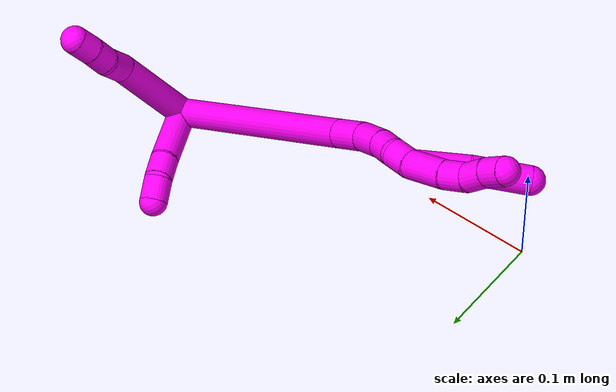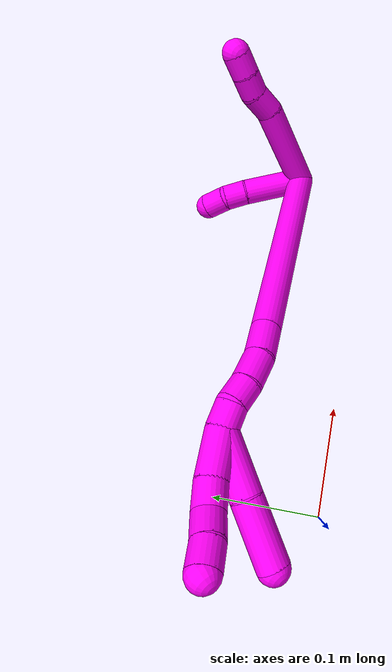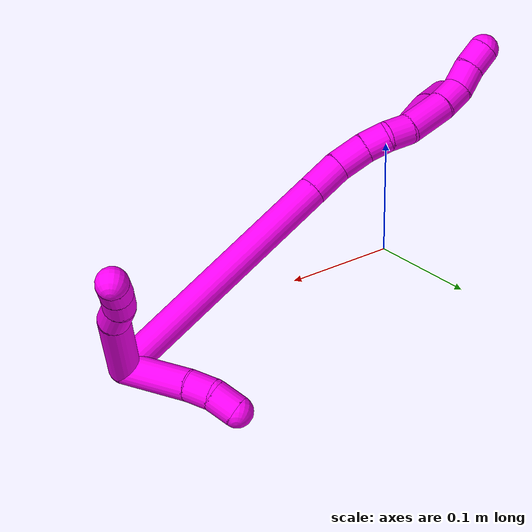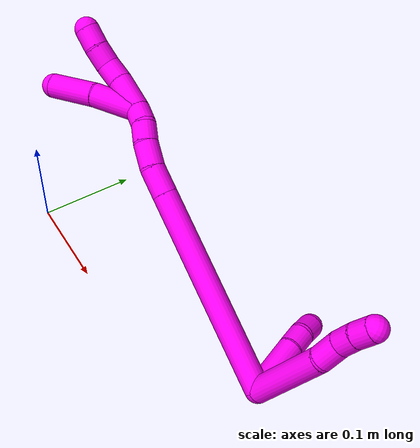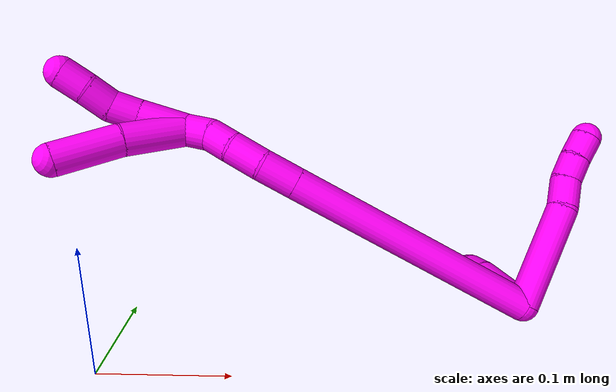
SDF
<sdf version="1.7">
 <world name="default">
  <model name="10">
   <static>0</static>
   <link name="10">
    <collision name="collision-cylinder-e_1_2_8">
     <pose>-0.016778 -0.03854 0.007703 1.37353 -0.40347 -0.332279</pose>
     <geometry><cylinder><radius>0.0125</radius><length>0.085468</length></cylinder></geometry>
     <surface>
      <friction><ode><mu>1.16</mu><mu2>1.16</mu2><slip1>0</slip1><slip2>0</slip2></ode></friction>
      <contact><ode><kp>1e+06</kp><kd>1</kd><max_vel>0</max_vel><min_depth>0.001</min_depth></ode></contact>
     </surface>
    </collision>
    <visual name="visual-cylinder-e_1_2_8">
     <pose>-0.016778 -0.03854 0.007703 1.37353 -0.40347 -0.332279</pose>
     <geometry><cylinder><radius>0.0125</radius><length>0.085468</length></cylinder></geometry>
     <material><ambient>1 0 0.964706 1</ambient></material>
    </visual>
    <collision name="collision-cylinder-e_2_8_9">
     <pose>-0.041147 -0.086345 0.01775 1.32296 -0.671308 -0.530362</pose>
     <geometry><cylinder><radius>0.0125</radius><length>0.024411</length></cylinder></geometry>
     <surface>
      <friction><ode><mu>1.16</mu><mu2>1.16</mu2><slip1>0</slip1><slip2>0</slip2></ode></friction>
      <contact><ode><kp>1e+06</kp><kd>1</kd><max_vel>0</max_vel><min_depth>0.001</min_depth></ode></contact>
     </surface>
    </collision>
    <visual name="visual-cylinder-e_2_8_9">
     <pose>-0.041147 -0.086345 0.01775 1.32296 -0.671308 -0.530362</pose>
     <geometry><cylinder><radius>0.0125</radius><length>0.024411</length></cylinder></geometry>
     <material><ambient>1 0 0.964706 1</ambient></material>
    </visual>
    <collision name="collision-cylinder-e_3_9_10">
     <pose>-0.052566 -0.104722 0.021846 1.38095 -0.391187 -0.32448</pose>
     <geometry><cylinder><radius>0.0125</radius><length>0.020075</length></cylinder></geometry>
     <surface>
      <friction><ode><mu>1.16</mu><mu2>1.16</mu2><slip1>0</slip1><slip2>0</slip2></ode></friction>
      <contact><ode><kp>1e+06</kp><kd>1</kd><max_vel>0</max_vel><min_depth>0.001</min_depth></ode></contact>
     </surface>
    </collision>
    <visual name="visual-cylinder-e_3_9_10">
     <pose>-0.052566 -0.104722 0.021846 1.38095 -0.391187 -0.32448</pose>
     <geometry><cylinder><radius>0.0125</radius><length>0.020075</length></cylinder></geometry>
     <material><ambient>1 0 0.964706 1</ambient></material>
    </visual>
    <collision name="collision-cylinder-e_4_10_6">
     <pose>-0.05978 -0.122882 0.02627 1.28347 -0.344596 -0.258624</pose>
     <geometry><cylinder><radius>0.0125</radius><length>0.020047</length></cylinder></geometry>
     <surface>
      <friction><ode><mu>1.16</mu><mu2>1.16</mu2><slip1>0</slip1><slip2>0</slip2></ode></friction>
      <contact><ode><kp>1e+06</kp><kd>1</kd><max_vel>0</max_vel><min_depth>0.001</min_depth></ode></contact>
     </surface>
    </collision>
    <visual name="visual-cylinder-e_4_10_6">
     <pose>-0.05978 -0.122882 0.02627 1.28347 -0.344596 -0.258624</pose>
     <geometry><cylinder><radius>0.0125</radius><length>0.020047</length></cylinder></geometry>
     <material><ambient>1 0 0.964706 1</ambient></material>
    </visual>
    <collision name="collision-cylinder-e_1_2_11">
     <pose>-0.025864 0.005112 0.011448 -0.419962 -1.11943 0.265495</pose>
     <geometry><cylinder><radius>0.0125</radius><length>0.057485</length></cylinder></geometry>
     <surface>
      <friction><ode><mu>1.16</mu><mu2>1.16</mu2><slip1>0</slip1><slip2>0</slip2></ode></friction>
      <contact><ode><kp>1e+06</kp><kd>1</kd><max_vel>0</max_vel><min_depth>0.001</min_depth></ode></contact>
     </surface>
    </collision>
    <visual name="visual-cylinder-e_1_2_11">
     <pose>-0.025864 0.005112 0.011448 -0.419962 -1.11943 0.265495</pose>
     <geometry><cylinder><radius>0.0125</radius><length>0.057485</length></cylinder></geometry>
     <material><ambient>1 0 0.964706 1</ambient></material>
    </visual>
    <collision name="collision-cylinder-e_2_11_12">
     <pose>-0.060605 0.01331 0.027456 -0.594906 -1.01559 0.337917</pose>
     <geometry><cylinder><radius>0.0125</radius><length>0.020893</length></cylinder></geometry>
     <surface>
      <friction><ode><mu>1.16</mu><mu2>1.16</mu2><slip1>0</slip1><slip2>0</slip2></ode></friction>
      <contact><ode><kp>1e+06</kp><kd>1</kd><max_vel>0</max_vel><min_depth>0.001</min_depth></ode></contact>
     </surface>
    </collision>
    <visual name="visual-cylinder-e_2_11_12">
     <pose>-0.060605 0.01331 0.027456 -0.594906 -1.01559 0.337917</pose>
     <geometry><cylinder><radius>0.0125</radius><length>0.020893</length></cylinder></geometry>
     <material><ambient>1 0 0.964706 1</ambient></material>
    </visual>
    <collision name="collision-cylinder-e_3_12_5">
     <pose>-0.076666 0.022187 0.037651 -0.79914 -0.726702 0.318417</pose>
     <geometry><cylinder><radius>0.0125</radius><length>0.021622</length></cylinder></geometry>
     <surface>
      <friction><ode><mu>1.16</mu><mu2>1.16</mu2><slip1>0</slip1><slip2>0</slip2></ode></friction>
      <contact><ode><kp>1e+06</kp><kd>1</kd><max_vel>0</max_vel><min_depth>0.001</min_depth></ode></contact>
     </surface>
    </collision>
    <visual name="visual-cylinder-e_3_12_5">
     <pose>-0.076666 0.022187 0.037651 -0.79914 -0.726702 0.318417</pose>
     <geometry><cylinder><radius>0.0125</radius><length>0.021622</length></cylinder></geometry>
     <material><ambient>1 0 0.964706 1</ambient></material>
    </visual>
    <collision name="collision-cylinder-e_1_2_13">
     <pose>-0.071612 0.010587 -0.072325 -2.99624 -0.775147 2.78862</pose>
     <geometry><cylinder><radius>0.0125</radius><length>0.204658</length></cylinder></geometry>
     <surface>
      <friction><ode><mu>1.16</mu><mu2>1.16</mu2><slip1>0</slip1><slip2>0</slip2></ode></friction>
      <contact><ode><kp>1e+06</kp><kd>1</kd><max_vel>0</max_vel><min_depth>0.001</min_depth></ode></contact>
     </surface>
    </collision>
    <visual name="visual-cylinder-e_1_2_13">
     <pose>-0.071612 0.010587 -0.072325 -2.99624 -0.775147 2.78862</pose>
     <geometry><cylinder><radius>0.0125</radius><length>0.204658</length></cylinder></geometry>
     <material><ambient>1 0 0.964706 1</ambient></material>
    </visual>
    <collision name="collision-cylinder-e_2_13_14">
     <pose>-0.153311 0.022615 -0.154832 -3.00098 -0.775739 2.80022</pose>
     <geometry><cylinder><radius>0.0125</radius><length>0.028812</length></cylinder></geometry>
     <surface>
      <friction><ode><mu>1.16</mu><mu2>1.16</mu2><slip1>0</slip1><slip2>0</slip2></ode></friction>
      <contact><ode><kp>1e+06</kp><kd>1</kd><max_vel>0</max_vel><min_depth>0.001</min_depth></ode></contact>
     </surface>
    </collision>
    <visual name="visual-cylinder-e_2_13_14">
     <pose>-0.153311 0.022615 -0.154832 -3.00098 -0.775739 2.80022</pose>
     <geometry><cylinder><radius>0.0125</radius><length>0.028812</length></cylinder></geometry>
     <material><ambient>1 0 0.964706 1</ambient></material>
    </visual>
    <collision name="collision-cylinder-e_3_14_15">
     <pose>-0.17423 0.025643 -0.172379 -2.92944 -0.963115 2.73961</pose>
     <geometry><cylinder><radius>0.0125</radius><length>0.026386</length></cylinder></geometry>
     <surface>
      <friction><ode><mu>1.16</mu><mu2>1.16</mu2><slip1>0</slip1><slip2>0</slip2></ode></friction>
      <contact><ode><kp>1e+06</kp><kd>1</kd><max_vel>0</max_vel><min_depth>0.001</min_depth></ode></contact>
     </surface>
    </collision>
    <visual name="visual-cylinder-e_3_14_15">
     <pose>-0.17423 0.025643 -0.172379 -2.92944 -0.963115 2.73961</pose>
     <geometry><cylinder><radius>0.0125</radius><length>0.026386</length></cylinder></geometry>
     <material><ambient>1 0 0.964706 1</ambient></material>
    </visual>
    <collision name="collision-cylinder-e_4_15_16">
     <pose>-0.19406 0.028773 -0.183936 -2.78869 -1.1099 2.58148</pose>
     <geometry><cylinder><radius>0.0125</radius><length>0.020093</length></cylinder></geometry>
     <surface>
      <friction><ode><mu>1.16</mu><mu2>1.16</mu2><slip1>0</slip1><slip2>0</slip2></ode></friction>
      <contact><ode><kp>1e+06</kp><kd>1</kd><max_vel>0</max_vel><min_depth>0.001</min_depth></ode></contact>
     </surface>
    </collision>
    <visual name="visual-cylinder-e_4_15_16">
     <pose>-0.19406 0.028773 -0.183936 -2.78869 -1.1099 2.58148</pose>
     <geometry><cylinder><radius>0.0125</radius><length>0.020093</length></cylinder></geometry>
     <material><ambient>1 0 0.964706 1</ambient></material>
    </visual>
    <collision name="collision-cylinder-e_5_16_1">
     <pose>-0.210586 0.034679 -0.193111 -2.4226 -0.849341 1.75471</pose>
     <geometry><cylinder><radius>0.0125</radius><length>0.020051</length></cylinder></geometry>
     <surface>
      <friction><ode><mu>1.16</mu><mu2>1.16</mu2><slip1>0</slip1><slip2>0</slip2></ode></friction>
      <contact><ode><kp>1e+06</kp><kd>1</kd><max_vel>0</max_vel><min_depth>0.001</min_depth></ode></contact>
     </surface>
    </collision>
    <visual name="visual-cylinder-e_5_16_1">
     <pose>-0.210586 0.034679 -0.193111 -2.4226 -0.849341 1.75471</pose>
     <geometry><cylinder><radius>0.0125</radius><length>0.020051</length></cylinder></geometry>
     <material><ambient>1 0 0.964706 1</ambient></material>
    </visual>
    <collision name="collision-cylinder-e_1_1_17">
     <pose>-0.230082 0.044546 -0.210703 -2.72987 -0.715952 2.12336</pose>
     <geometry><cylinder><radius>0.0125</radius><length>0.036472</length></cylinder></geometry>
     <surface>
      <friction><ode><mu>1.16</mu><mu2>1.16</mu2><slip1>0</slip1><slip2>0</slip2></ode></friction>
      <contact><ode><kp>1e+06</kp><kd>1</kd><max_vel>0</max_vel><min_depth>0.001</min_depth></ode></contact>
     </surface>
    </collision>
    <visual name="visual-cylinder-e_1_1_17">
     <pose>-0.230082 0.044546 -0.210703 -2.72987 -0.715952 2.12336</pose>
     <geometry><cylinder><radius>0.0125</radius><length>0.036472</length></cylinder></geometry>
     <material><ambient>1 0 0.964706 1</ambient></material>
    </visual>
    <collision name="collision-cylinder-e_2_17_18">
     <pose>-0.248214 0.05261 -0.23188 -2.85152 -0.603418 2.26396</pose>
     <geometry><cylinder><radius>0.0125</radius><length>0.02172</length></cylinder></geometry>
     <surface>
      <friction><ode><mu>1.16</mu><mu2>1.16</mu2><slip1>0</slip1><slip2>0</slip2></ode></friction>
      <contact><ode><kp>1e+06</kp><kd>1</kd><max_vel>0</max_vel><min_depth>0.001</min_depth></ode></contact>
     </surface>
    </collision>
    <visual name="visual-cylinder-e_2_17_18">
     <pose>-0.248214 0.05261 -0.23188 -2.85152 -0.603418 2.26396</pose>
     <geometry><cylinder><radius>0.0125</radius><length>0.02172</length></cylinder></geometry>
     <material><ambient>1 0 0.964706 1</ambient></material>
    </visual>
    <collision name="collision-cylinder-e_3_18_19">
     <pose>-0.259946 0.054105 -0.249409 3.02357 -0.552958 -2.73102</pose>
     <geometry><cylinder><radius>0.0125</radius><length>0.021207</length></cylinder></geometry>
     <surface>
      <friction><ode><mu>1.16</mu><mu2>1.16</mu2><slip1>0</slip1><slip2>0</slip2></ode></friction>
      <contact><ode><kp>1e+06</kp><kd>1</kd><max_vel>0</max_vel><min_depth>0.001</min_depth></ode></contact>
     </surface>
    </collision>
    <visual name="visual-cylinder-e_3_18_19">
     <pose>-0.259946 0.054105 -0.249409 3.02357 -0.552958 -2.73102</pose>
     <geometry><cylinder><radius>0.0125</radius><length>0.021207</length></cylinder></geometry>
     <material><ambient>1 0 0.964706 1</ambient></material>
    </visual>
    <collision name="collision-cylinder-e_4_19_4">
     <pose>-0.272055 0.05288 -0.266325 3.1212 -0.687994 -3.08467</pose>
     <geometry><cylinder><radius>0.0125</radius><length>0.020601</length></cylinder></geometry>
     <surface>
      <friction><ode><mu>1.16</mu><mu2>1.16</mu2><slip1>0</slip1><slip2>0</slip2></ode></friction>
      <contact><ode><kp>1e+06</kp><kd>1</kd><max_vel>0</max_vel><min_depth>0.001</min_depth></ode></contact>
     </surface>
    </collision>
    <visual name="visual-cylinder-e_4_19_4">
     <pose>-0.272055 0.05288 -0.266325 3.1212 -0.687994 -3.08467</pose>
     <geometry><cylinder><radius>0.0125</radius><length>0.020601</length></cylinder></geometry>
     <material><ambient>1 0 0.964706 1</ambient></material>
    </visual>
    <collision name="collision-cylinder-e_1_1_20">
     <pose>-0.220635 0.052197 -0.218823 -2.57604 -0.102342 0.348943</pose>
     <geometry><cylinder><radius>0.0125</radius><length>0.049364</length></cylinder></geometry>
     <surface>
      <friction><ode><mu>1.16</mu><mu2>1.16</mu2><slip1>0</slip1><slip2>0</slip2></ode></friction>
      <contact><ode><kp>1e+06</kp><kd>1</kd><max_vel>0</max_vel><min_depth>0.001</min_depth></ode></contact>
     </surface>
    </collision>
    <visual name="visual-cylinder-e_1_1_20">
     <pose>-0.220635 0.052197 -0.218823 -2.57604 -0.102342 0.348943</pose>
     <geometry><cylinder><radius>0.0125</radius><length>0.049364</length></cylinder></geometry>
     <material><ambient>1 0 0.964706 1</ambient></material>
    </visual>
    <collision name="collision-cylinder-e_2_20_3">
     <pose>-0.224435 0.081258 -0.259211 -2.46139 -0.050537 0.142609</pose>
     <geometry><cylinder><radius>0.0125</radius><length>0.050636</length></cylinder></geometry>
     <surface>
      <friction><ode><mu>1.16</mu><mu2>1.16</mu2><slip1>0</slip1><slip2>0</slip2></ode></friction>
      <contact><ode><kp>1e+06</kp><kd>1</kd><max_vel>0</max_vel><min_depth>0.001</min_depth></ode></contact>
     </surface>
    </collision>
    <visual name="visual-cylinder-e_2_20_3">
     <pose>-0.224435 0.081258 -0.259211 -2.46139 -0.050537 0.142609</pose>
     <geometry><cylinder><radius>0.0125</radius><length>0.050636</length></cylinder></geometry>
     <material><ambient>1 0 0.964706 1</ambient></material>
    </visual>
    <collision name="collision-sphere-3">
     <pose>-0.225714 0.097162 -0.27887 0 -0 0</pose>
     <geometry><sphere><radius>0.0125</radius></sphere></geometry>
     <surface>
      <friction><ode><mu>1.16</mu><mu2>1.16</mu2><slip1>0</slip1><slip2>0</slip2></ode></friction>
      <contact><ode><kp>1e+06</kp><kd>1</kd><max_vel>0</max_vel><min_depth>0.001</min_depth></ode></contact>
     </surface>
    </collision>
    <visual name="visual-sphere-3">
     <pose>-0.225714 0.097162 -0.27887 0 -0 0</pose>
     <geometry><sphere><radius>0.0125</radius></sphere></geometry>
     <material><ambient>1 0 0.964706 1</ambient></material>
    </visual>
    <collision name="collision-sphere-20">
     <pose>-0.223156 0.065355 -0.239553 0 -0 0</pose>
     <geometry><sphere><radius>0.0125</radius></sphere></geometry>
     <surface>
      <friction><ode><mu>1.16</mu><mu2>1.16</mu2><slip1>0</slip1><slip2>0</slip2></ode></friction>
      <contact><ode><kp>1e+06</kp><kd>1</kd><max_vel>0</max_vel><min_depth>0.001</min_depth></ode></contact>
     </surface>
    </collision>
    <visual name="visual-sphere-20">
     <pose>-0.223156 0.065355 -0.239553 0 -0 0</pose>
     <geometry><sphere><radius>0.0125</radius></sphere></geometry>
     <material><ambient>1 0 0.964706 1</ambient></material>
    </visual>
    <collision name="collision-sphere-4">
     <pose>-0.278596 0.052718 -0.274281 0 -0 0</pose>
     <geometry><sphere><radius>0.0125</radius></sphere></geometry>
     <surface>
      <friction><ode><mu>1.16</mu><mu2>1.16</mu2><slip1>0</slip1><slip2>0</slip2></ode></friction>
      <contact><ode><kp>1e+06</kp><kd>1</kd><max_vel>0</max_vel><min_depth>0.001</min_depth></ode></contact>
     </surface>
    </collision>
    <visual name="visual-sphere-4">
     <pose>-0.278596 0.052718 -0.274281 0 -0 0</pose>
     <geometry><sphere><radius>0.0125</radius></sphere></geometry>
     <material><ambient>1 0 0.964706 1</ambient></material>
    </visual>
    <collision name="collision-sphere-11">
     <pose>-0.051728 0.010224 0.022896 0 -0 0</pose>
     <geometry><sphere><radius>0.0125</radius></sphere></geometry>
     <surface>
      <friction><ode><mu>1.16</mu><mu2>1.16</mu2><slip1>0</slip1><slip2>0</slip2></ode></friction>
      <contact><ode><kp>1e+06</kp><kd>1</kd><max_vel>0</max_vel><min_depth>0.001</min_depth></ode></contact>
     </surface>
    </collision>
    <visual name="visual-sphere-11">
     <pose>-0.051728 0.010224 0.022896 0 -0 0</pose>
     <geometry><sphere><radius>0.0125</radius></sphere></geometry>
     <material><ambient>1 0 0.964706 1</ambient></material>
    </visual>
    <collision name="collision-sphere-6">
     <pose>-0.063166 -0.13193 0.028944 0 -0 0</pose>
     <geometry><sphere><radius>0.0125</radius></sphere></geometry>
     <surface>
      <friction><ode><mu>1.16</mu><mu2>1.16</mu2><slip1>0</slip1><slip2>0</slip2></ode></friction>
      <contact><ode><kp>1e+06</kp><kd>1</kd><max_vel>0</max_vel><min_depth>0.001</min_depth></ode></contact>
     </surface>
    </collision>
    <visual name="visual-sphere-6">
     <pose>-0.063166 -0.13193 0.028944 0 -0 0</pose>
     <geometry><sphere><radius>0.0125</radius></sphere></geometry>
     <material><ambient>1 0 0.964706 1</ambient></material>
    </visual>
    <collision name="collision-sphere-10">
     <pose>-0.056393 -0.113835 0.023597 0 -0 0</pose>
     <geometry><sphere><radius>0.0125</radius></sphere></geometry>
     <surface>
      <friction><ode><mu>1.16</mu><mu2>1.16</mu2><slip1>0</slip1><slip2>0</slip2></ode></friction>
      <contact><ode><kp>1e+06</kp><kd>1</kd><max_vel>0</max_vel><min_depth>0.001</min_depth></ode></contact>
     </surface>
    </collision>
    <visual name="visual-sphere-10">
     <pose>-0.056393 -0.113835 0.023597 0 -0 0</pose>
     <geometry><sphere><radius>0.0125</radius></sphere></geometry>
     <material><ambient>1 0 0.964706 1</ambient></material>
    </visual>
    <collision name="collision-sphere-9">
     <pose>-0.048739 -0.09561 0.020095 0 -0 0</pose>
     <geometry><sphere><radius>0.0125</radius></sphere></geometry>
     <surface>
      <friction><ode><mu>1.16</mu><mu2>1.16</mu2><slip1>0</slip1><slip2>0</slip2></ode></friction>
      <contact><ode><kp>1e+06</kp><kd>1</kd><max_vel>0</max_vel><min_depth>0.001</min_depth></ode></contact>
     </surface>
    </collision>
    <visual name="visual-sphere-9">
     <pose>-0.048739 -0.09561 0.020095 0 -0 0</pose>
     <geometry><sphere><radius>0.0125</radius></sphere></geometry>
     <material><ambient>1 0 0.964706 1</ambient></material>
    </visual>
    <collision name="collision-sphere-2">
     <geometry><sphere><radius>0.0125</radius></sphere></geometry>
     <surface>
      <friction><ode><mu>1.16</mu><mu2>1.16</mu2><slip1>0</slip1><slip2>0</slip2></ode></friction>
      <contact><ode><kp>1e+06</kp><kd>1</kd><max_vel>0</max_vel><min_depth>0.001</min_depth></ode></contact>
     </surface>
    </collision>
    <visual name="visual-sphere-2">
     <geometry><sphere><radius>0.0125</radius></sphere></geometry>
     <material><ambient>1 0 0.964706 1</ambient></material>
    </visual>
    <collision name="collision-sphere-19">
     <pose>-0.265515 0.053042 -0.25837 0 -0 0</pose>
     <geometry><sphere><radius>0.0125</radius></sphere></geometry>
     <surface>
      <friction><ode><mu>1.16</mu><mu2>1.16</mu2><slip1>0</slip1><slip2>0</slip2></ode></friction>
      <contact><ode><kp>1e+06</kp><kd>1</kd><max_vel>0</max_vel><min_depth>0.001</min_depth></ode></contact>
     </surface>
    </collision>
    <visual name="visual-sphere-19">
     <pose>-0.265515 0.053042 -0.25837 0 -0 0</pose>
     <geometry><sphere><radius>0.0125</radius></sphere></geometry>
     <material><ambient>1 0 0.964706 1</ambient></material>
    </visual>
    <collision name="collision-sphere-8">
     <pose>-0.033556 -0.07708 0.015406 0 -0 0</pose>
     <geometry><sphere><radius>0.0125</radius></sphere></geometry>
     <surface>
      <friction><ode><mu>1.16</mu><mu2>1.16</mu2><slip1>0</slip1><slip2>0</slip2></ode></friction>
      <contact><ode><kp>1e+06</kp><kd>1</kd><max_vel>0</max_vel><min_depth>0.001</min_depth></ode></contact>
     </surface>
    </collision>
    <visual name="visual-sphere-8">
     <pose>-0.033556 -0.07708 0.015406 0 -0 0</pose>
     <geometry><sphere><radius>0.0125</radius></sphere></geometry>
     <material><ambient>1 0 0.964706 1</ambient></material>
    </visual>
    <collision name="collision-sphere-12">
     <pose>-0.069483 0.016396 0.032017 0 -0 0</pose>
     <geometry><sphere><radius>0.0125</radius></sphere></geometry>
     <surface>
      <friction><ode><mu>1.16</mu><mu2>1.16</mu2><slip1>0</slip1><slip2>0</slip2></ode></friction>
      <contact><ode><kp>1e+06</kp><kd>1</kd><max_vel>0</max_vel><min_depth>0.001</min_depth></ode></contact>
     </surface>
    </collision>
    <visual name="visual-sphere-12">
     <pose>-0.069483 0.016396 0.032017 0 -0 0</pose>
     <geometry><sphere><radius>0.0125</radius></sphere></geometry>
     <material><ambient>1 0 0.964706 1</ambient></material>
    </visual>
    <collision name="collision-sphere-5">
     <pose>-0.083849 0.027978 0.043285 0 -0 0</pose>
     <geometry><sphere><radius>0.0125</radius></sphere></geometry>
     <surface>
      <friction><ode><mu>1.16</mu><mu2>1.16</mu2><slip1>0</slip1><slip2>0</slip2></ode></friction>
      <contact><ode><kp>1e+06</kp><kd>1</kd><max_vel>0</max_vel><min_depth>0.001</min_depth></ode></contact>
     </surface>
    </collision>
    <visual name="visual-sphere-5">
     <pose>-0.083849 0.027978 0.043285 0 -0 0</pose>
     <geometry><sphere><radius>0.0125</radius></sphere></geometry>
     <material><ambient>1 0 0.964706 1</ambient></material>
    </visual>
    <collision name="collision-sphere-13">
     <pose>-0.143224 0.021174 -0.144649 0 -0 0</pose>
     <geometry><sphere><radius>0.0125</radius></sphere></geometry>
     <surface>
      <friction><ode><mu>1.16</mu><mu2>1.16</mu2><slip1>0</slip1><slip2>0</slip2></ode></friction>
      <contact><ode><kp>1e+06</kp><kd>1</kd><max_vel>0</max_vel><min_depth>0.001</min_depth></ode></contact>
     </surface>
    </collision>
    <visual name="visual-sphere-13">
     <pose>-0.143224 0.021174 -0.144649 0 -0 0</pose>
     <geometry><sphere><radius>0.0125</radius></sphere></geometry>
     <material><ambient>1 0 0.964706 1</ambient></material>
    </visual>
    <collision name="collision-sphere-14">
     <pose>-0.163399 0.024057 -0.165015 0 -0 0</pose>
     <geometry><sphere><radius>0.0125</radius></sphere></geometry>
     <surface>
      <friction><ode><mu>1.16</mu><mu2>1.16</mu2><slip1>0</slip1><slip2>0</slip2></ode></friction>
      <contact><ode><kp>1e+06</kp><kd>1</kd><max_vel>0</max_vel><min_depth>0.001</min_depth></ode></contact>
     </surface>
    </collision>
    <visual name="visual-sphere-14">
     <pose>-0.163399 0.024057 -0.165015 0 -0 0</pose>
     <geometry><sphere><radius>0.0125</radius></sphere></geometry>
     <material><ambient>1 0 0.964706 1</ambient></material>
    </visual>
    <collision name="collision-sphere-15">
     <pose>-0.185061 0.027229 -0.179743 0 -0 0</pose>
     <geometry><sphere><radius>0.0125</radius></sphere></geometry>
     <surface>
      <friction><ode><mu>1.16</mu><mu2>1.16</mu2><slip1>0</slip1><slip2>0</slip2></ode></friction>
      <contact><ode><kp>1e+06</kp><kd>1</kd><max_vel>0</max_vel><min_depth>0.001</min_depth></ode></contact>
     </surface>
    </collision>
    <visual name="visual-sphere-15">
     <pose>-0.185061 0.027229 -0.179743 0 -0 0</pose>
     <geometry><sphere><radius>0.0125</radius></sphere></geometry>
     <material><ambient>1 0 0.964706 1</ambient></material>
    </visual>
    <collision name="collision-sphere-16">
     <pose>-0.203058 0.030317 -0.188128 0 -0 0</pose>
     <geometry><sphere><radius>0.0125</radius></sphere></geometry>
     <surface>
      <friction><ode><mu>1.16</mu><mu2>1.16</mu2><slip1>0</slip1><slip2>0</slip2></ode></friction>
      <contact><ode><kp>1e+06</kp><kd>1</kd><max_vel>0</max_vel><min_depth>0.001</min_depth></ode></contact>
     </surface>
    </collision>
    <visual name="visual-sphere-16">
     <pose>-0.203058 0.030317 -0.188128 0 -0 0</pose>
     <geometry><sphere><radius>0.0125</radius></sphere></geometry>
     <material><ambient>1 0 0.964706 1</ambient></material>
    </visual>
    <collision name="collision-sphere-1">
     <pose>-0.218113 0.03904 -0.198094 0 -0 0</pose>
     <geometry><sphere><radius>0.0125</radius></sphere></geometry>
     <surface>
      <friction><ode><mu>1.16</mu><mu2>1.16</mu2><slip1>0</slip1><slip2>0</slip2></ode></friction>
      <contact><ode><kp>1e+06</kp><kd>1</kd><max_vel>0</max_vel><min_depth>0.001</min_depth></ode></contact>
     </surface>
    </collision>
    <visual name="visual-sphere-1">
     <pose>-0.218113 0.03904 -0.198094 0 -0 0</pose>
     <geometry><sphere><radius>0.0125</radius></sphere></geometry>
     <material><ambient>1 0 0.964706 1</ambient></material>
    </visual>
    <collision name="collision-sphere-18">
     <pose>-0.254376 0.055167 -0.240448 0 -0 0</pose>
     <geometry><sphere><radius>0.0125</radius></sphere></geometry>
     <surface>
      <friction><ode><mu>1.16</mu><mu2>1.16</mu2><slip1>0</slip1><slip2>0</slip2></ode></friction>
      <contact><ode><kp>1e+06</kp><kd>1</kd><max_vel>0</max_vel><min_depth>0.001</min_depth></ode></contact>
     </surface>
    </collision>
    <visual name="visual-sphere-18">
     <pose>-0.254376 0.055167 -0.240448 0 -0 0</pose>
     <geometry><sphere><radius>0.0125</radius></sphere></geometry>
     <material><ambient>1 0 0.964706 1</ambient></material>
    </visual>
    <collision name="collision-sphere-17">
     <pose>-0.242051 0.050052 -0.223311 0 -0 0</pose>
     <geometry><sphere><radius>0.0125</radius></sphere></geometry>
     <surface>
      <friction><ode><mu>1.16</mu><mu2>1.16</mu2><slip1>0</slip1><slip2>0</slip2></ode></friction>
      <contact><ode><kp>1e+06</kp><kd>1</kd><max_vel>0</max_vel><min_depth>0.001</min_depth></ode></contact>
     </surface>
    </collision>
    <visual name="visual-sphere-17">
     <pose>-0.242051 0.050052 -0.223311 0 -0 0</pose>
     <geometry><sphere><radius>0.0125</radius></sphere></geometry>
     <material><ambient>1 0 0.964706 1</ambient></material>
    </visual>
    <inertial>
     <pose>-0.117401 0.010064 -0.099601 0 -0 0</pose>
     <mass>0.75</mass>
     <inertia>
      <ixx>-0.000267</ixx>
      <ixy>0</ixy>
      <ixz>0</ixz>
      <iyy>0.000909</iyy>
      <iyz>0</iyz>
      <izz>0.000498</izz>
     </inertia>
    </inertial>
   </link>
   <pose>0.321176 0.070622 0.023612 -2.07086 0.368115 -0.896685</pose>
  </model>
 </world>
</sdf>
